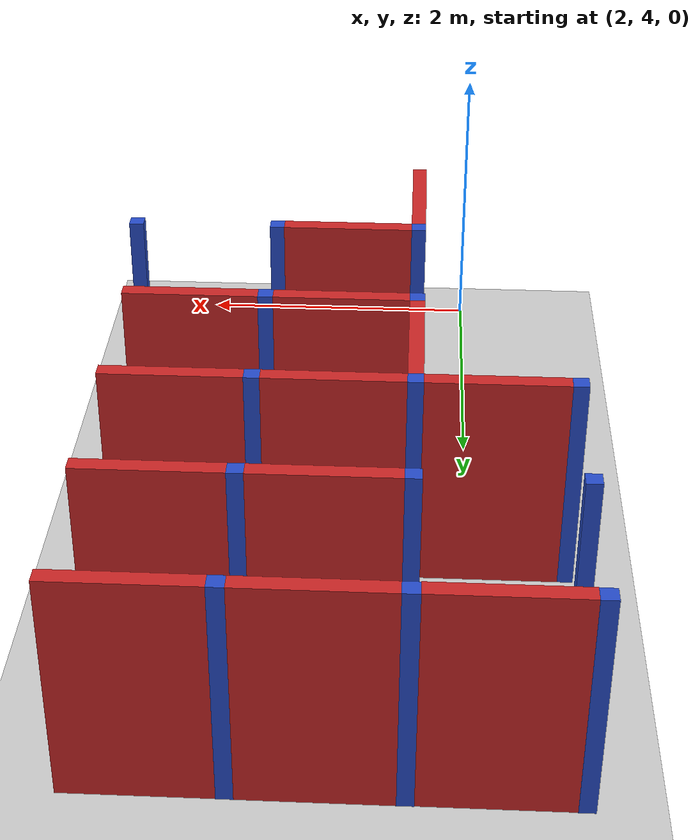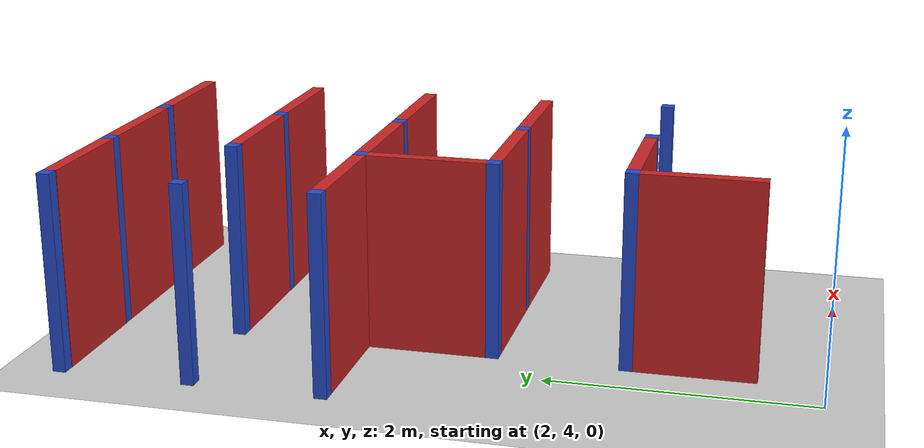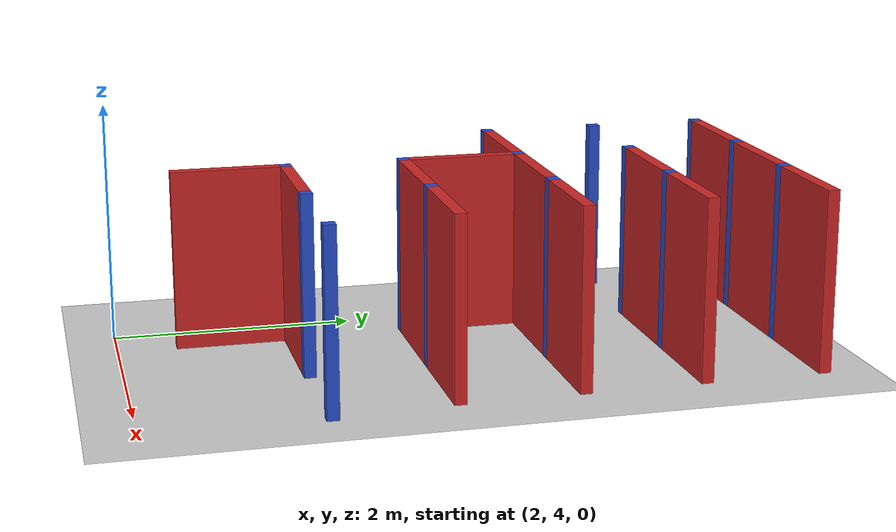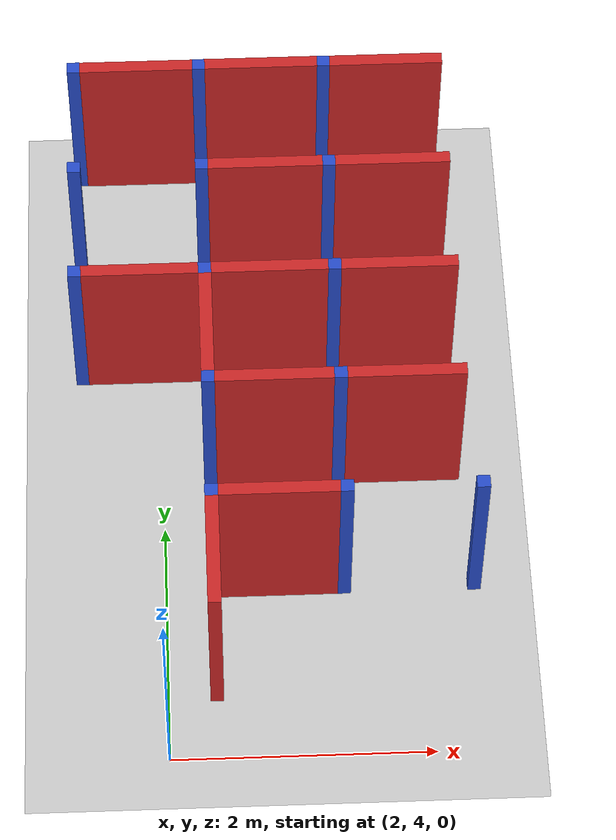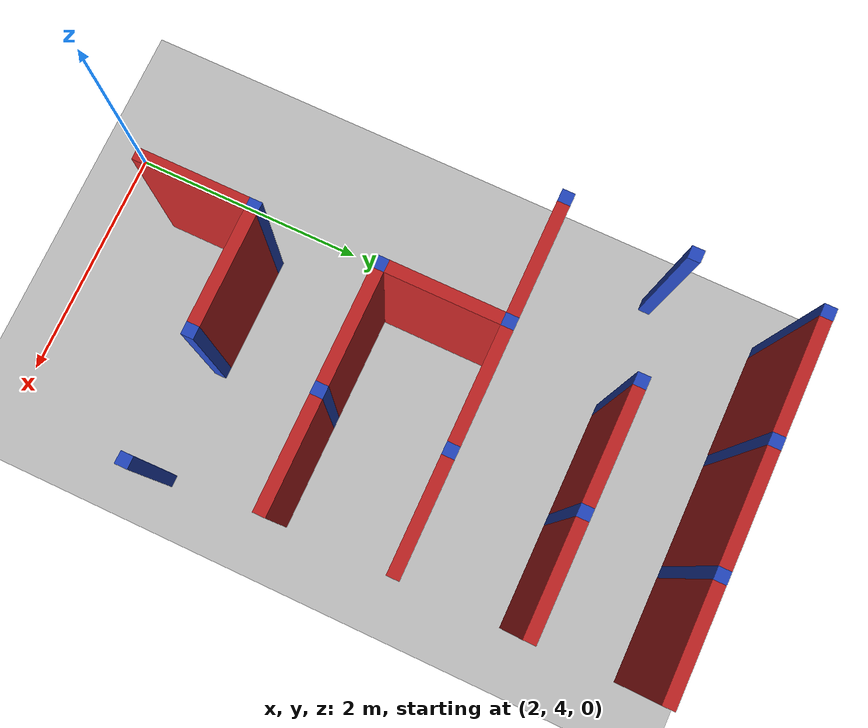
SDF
<sdf version="1.7">
 <world name="default">
  <model name="ground_plane">
   <static>1</static>
   <link name="link">
    <collision name="collision">
     <geometry><plane><normal>0 0 1</normal><size>100 100</size></plane></geometry>
     <surface><friction><ode><mu>100</mu><mu2>50</mu2></ode></friction></surface>
    </collision>
    <visual name="visual">
     <cast_shadows>0</cast_shadows>
     <geometry><plane><normal>0 0 1</normal><size>100 100</size></plane></geometry>
     <material>
      <script><uri>file://media/materials/scripts/gazebo.material</uri><name>Gazebo/Grey</name></script>
     </material>
    </visual>
   </link>
  </model>
  <model name="deneme">
   <link name="Joint_10_-10">
    <pose>10 -10 0 0 -0 0</pose>
    <visual name="Wall_2_Visual">
     <pose>0 0 0.75 0 -0 0</pose>
     <geometry><box><size>0.1 0.1 1.5</size></box></geometry>
     <material>
      <script><uri>file://media/materials/scripts/gazebo.material</uri><name>Gazebo/Blue</name></script>
      <ambient>0.996078 0.47451 0.0196078 1</ambient>
      <shader type="pixel"/>
     </material>
     <meta><layer>0</layer></meta>
    </visual>
    <collision name="Wall_2_Collision">
     <pose>0 0 0.75 0 -0 0</pose>
     <geometry><box><size>0.1 0.1 1.5</size></box></geometry>
     <surface>
      <friction>
       <ode><mu>1</mu><mu2>1</mu2><fdir1>0 0 0</fdir1><slip1>0</slip1><slip2>0</slip2></ode>
       <torsional>
        <coefficient>1</coefficient>
        <patch_radius>0</patch_radius>
        <surface_radius>0</surface_radius>
        <use_patch_radius>1</use_patch_radius>
        <ode><slip>0</slip></ode>
       </torsional>
      </friction>
      <bounce><restitution_coefficient>0</restitution_coefficient><threshold>1e+06</threshold></bounce>
      <contact>
       <collide_without_contact>0</collide_without_contact>
       <collide_without_contact_bitmask>1</collide_without_contact_bitmask>
       <collide_bitmask>1</collide_bitmask>
       <ode>
        <soft_cfm>0</soft_cfm>
        <soft_erp>0.2</soft_erp>
        <kp>1e+13</kp>
        <kd>1</kd>
        <max_vel>0.01</max_vel>
        <min_depth>0</min_depth>
       </ode>
       <bullet>
        <split_impulse>1</split_impulse>
        <split_impulse_penetration_threshold>-0.01</split_impulse_penetration_threshold>
        <soft_cfm>0</soft_cfm>
        <soft_erp>0.2</soft_erp>
        <kp>1e+13</kp>
        <kd>1</kd>
       </bullet>
      </contact>
     </surface>
    </collision>
   </link>
   <link name="Joint_7_-6">
    <pose>7 -6 0 0 -0 0</pose>
    <visual name="Wall_2_Visual">
     <pose>0 0 0.75 0 -0 0</pose>
     <geometry><box><size>0.1 0.1 1.5</size></box></geometry>
     <material>
      <script><uri>file://media/materials/scripts/gazebo.material</uri><name>Gazebo/Blue</name></script>
      <ambient>0.996078 0.47451 0.0196078 1</ambient>
      <shader type="pixel"/>
     </material>
     <meta><layer>0</layer></meta>
    </visual>
    <collision name="Wall_2_Collision">
     <pose>0 0 0.75 0 -0 0</pose>
     <geometry><box><size>0.1 0.1 1.5</size></box></geometry>
     <surface>
      <friction>
       <ode><mu>1</mu><mu2>1</mu2><fdir1>0 0 0</fdir1><slip1>0</slip1><slip2>0</slip2></ode>
       <torsional>
        <coefficient>1</coefficient>
        <patch_radius>0</patch_radius>
        <surface_radius>0</surface_radius>
        <use_patch_radius>1</use_patch_radius>
        <ode><slip>0</slip></ode>
       </torsional>
      </friction>
      <bounce><restitution_coefficient>0</restitution_coefficient><threshold>1e+06</threshold></bounce>
      <contact>
       <collide_without_contact>0</collide_without_contact>
       <collide_without_contact_bitmask>1</collide_without_contact_bitmask>
       <collide_bitmask>1</collide_bitmask>
       <ode>
        <soft_cfm>0</soft_cfm>
        <soft_erp>0.2</soft_erp>
        <kp>1e+13</kp>
        <kd>1</kd>
        <max_vel>0.01</max_vel>
        <min_depth>0</min_depth>
       </ode>
       <bullet>
        <split_impulse>1</split_impulse>
        <split_impulse_penetration_threshold>-0.01</split_impulse_penetration_threshold>
        <soft_cfm>0</soft_cfm>
        <soft_erp>0.2</soft_erp>
        <kp>1e+13</kp>
        <kd>1</kd>
       </bullet>
      </contact>
     </surface>
    </collision>
   </link>
   <link name="Joint_7_-7">
    <pose>7 -7 0 0 -0 0</pose>
    <visual name="Wall_2_Visual">
     <pose>0 0 0.75 0 -0 0</pose>
     <geometry><box><size>0.1 0.1 1.5</size></box></geometry>
     <material>
      <script><uri>file://media/materials/scripts/gazebo.material</uri><name>Gazebo/Blue</name></script>
      <ambient>0.996078 0.47451 0.0196078 1</ambient>
      <shader type="pixel"/>
     </material>
     <meta><layer>0</layer></meta>
    </visual>
    <collision name="Wall_2_Collision">
     <pose>0 0 0.75 0 -0 0</pose>
     <geometry><box><size>0.1 0.1 1.5</size></box></geometry>
     <surface>
      <friction>
       <ode><mu>1</mu><mu2>1</mu2><fdir1>0 0 0</fdir1><slip1>0</slip1><slip2>0</slip2></ode>
       <torsional>
        <coefficient>1</coefficient>
        <patch_radius>0</patch_radius>
        <surface_radius>0</surface_radius>
        <use_patch_radius>1</use_patch_radius>
        <ode><slip>0</slip></ode>
       </torsional>
      </friction>
      <bounce><restitution_coefficient>0</restitution_coefficient><threshold>1e+06</threshold></bounce>
      <contact>
       <collide_without_contact>0</collide_without_contact>
       <collide_without_contact_bitmask>1</collide_without_contact_bitmask>
       <collide_bitmask>1</collide_bitmask>
       <ode>
        <soft_cfm>0</soft_cfm>
        <soft_erp>0.2</soft_erp>
        <kp>1e+13</kp>
        <kd>1</kd>
        <max_vel>0.01</max_vel>
        <min_depth>0</min_depth>
       </ode>
       <bullet>
        <split_impulse>1</split_impulse>
        <split_impulse_penetration_threshold>-0.01</split_impulse_penetration_threshold>
        <soft_cfm>0</soft_cfm>
        <soft_erp>0.2</soft_erp>
        <kp>1e+13</kp>
        <kd>1</kd>
       </bullet>
      </contact>
     </surface>
    </collision>
   </link>
   <link name="Joint_7_-8">
    <pose>7 -8 0 0 -0 0</pose>
    <visual name="Wall_2_Visual">
     <pose>0 0 0.75 0 -0 0</pose>
     <geometry><box><size>0.1 0.1 1.5</size></box></geometry>
     <material>
      <script><uri>file://media/materials/scripts/gazebo.material</uri><name>Gazebo/Blue</name></script>
      <ambient>0.996078 0.47451 0.0196078 1</ambient>
      <shader type="pixel"/>
     </material>
     <meta><layer>0</layer></meta>
    </visual>
    <collision name="Wall_2_Collision">
     <pose>0 0 0.75 0 -0 0</pose>
     <geometry><box><size>0.1 0.1 1.5</size></box></geometry>
     <surface>
      <friction>
       <ode><mu>1</mu><mu2>1</mu2><fdir1>0 0 0</fdir1><slip1>0</slip1><slip2>0</slip2></ode>
       <torsional>
        <coefficient>1</coefficient>
        <patch_radius>0</patch_radius>
        <surface_radius>0</surface_radius>
        <use_patch_radius>1</use_patch_radius>
        <ode><slip>0</slip></ode>
       </torsional>
      </friction>
      <bounce><restitution_coefficient>0</restitution_coefficient><threshold>1e+06</threshold></bounce>
      <contact>
       <collide_without_contact>0</collide_without_contact>
       <collide_without_contact_bitmask>1</collide_without_contact_bitmask>
       <collide_bitmask>1</collide_bitmask>
       <ode>
        <soft_cfm>0</soft_cfm>
        <soft_erp>0.2</soft_erp>
        <kp>1e+13</kp>
        <kd>1</kd>
        <max_vel>0.01</max_vel>
        <min_depth>0</min_depth>
       </ode>
       <bullet>
        <split_impulse>1</split_impulse>
        <split_impulse_penetration_threshold>-0.01</split_impulse_penetration_threshold>
        <soft_cfm>0</soft_cfm>
        <soft_erp>0.2</soft_erp>
        <kp>1e+13</kp>
        <kd>1</kd>
       </bullet>
      </contact>
     </surface>
    </collision>
   </link>
   <link name="Joint_8_-10">
    <pose>8 -10 0 0 -0 0</pose>
    <visual name="Wall_2_Visual">
     <pose>0 0 0.75 0 -0 0</pose>
     <geometry><box><size>0.1 0.1 1.5</size></box></geometry>
     <material>
      <script><uri>file://media/materials/scripts/gazebo.material</uri><name>Gazebo/Blue</name></script>
      <ambient>0.996078 0.47451 0.0196078 1</ambient>
      <shader type="pixel"/>
     </material>
     <meta><layer>0</layer></meta>
    </visual>
    <collision name="Wall_2_Collision">
     <pose>0 0 0.75 0 -0 0</pose>
     <geometry><box><size>0.1 0.1 1.5</size></box></geometry>
     <surface>
      <friction>
       <ode><mu>1</mu><mu2>1</mu2><fdir1>0 0 0</fdir1><slip1>0</slip1><slip2>0</slip2></ode>
       <torsional>
        <coefficient>1</coefficient>
        <patch_radius>0</patch_radius>
        <surface_radius>0</surface_radius>
        <use_patch_radius>1</use_patch_radius>
        <ode><slip>0</slip></ode>
       </torsional>
      </friction>
      <bounce><restitution_coefficient>0</restitution_coefficient><threshold>1e+06</threshold></bounce>
      <contact>
       <collide_without_contact>0</collide_without_contact>
       <collide_without_contact_bitmask>1</collide_without_contact_bitmask>
       <collide_bitmask>1</collide_bitmask>
       <ode>
        <soft_cfm>0</soft_cfm>
        <soft_erp>0.2</soft_erp>
        <kp>1e+13</kp>
        <kd>1</kd>
        <max_vel>0.01</max_vel>
        <min_depth>0</min_depth>
       </ode>
       <bullet>
        <split_impulse>1</split_impulse>
        <split_impulse_penetration_threshold>-0.01</split_impulse_penetration_threshold>
        <soft_cfm>0</soft_cfm>
        <soft_erp>0.2</soft_erp>
        <kp>1e+13</kp>
        <kd>1</kd>
       </bullet>
      </contact>
     </surface>
    </collision>
   </link>
   <link name="Joint_8_-6">
    <pose>8 -6 0 0 -0 0</pose>
    <visual name="Wall_2_Visual">
     <pose>0 0 0.75 0 -0 0</pose>
     <geometry><box><size>0.1 0.1 1.5</size></box></geometry>
     <material>
      <script><uri>file://media/materials/scripts/gazebo.material</uri><name>Gazebo/Blue</name></script>
      <ambient>0.996078 0.47451 0.0196078 1</ambient>
      <shader type="pixel"/>
     </material>
     <meta><layer>0</layer></meta>
    </visual>
    <collision name="Wall_2_Collision">
     <pose>0 0 0.75 0 -0 0</pose>
     <geometry><box><size>0.1 0.1 1.5</size></box></geometry>
     <surface>
      <friction>
       <ode><mu>1</mu><mu2>1</mu2><fdir1>0 0 0</fdir1><slip1>0</slip1><slip2>0</slip2></ode>
       <torsional>
        <coefficient>1</coefficient>
        <patch_radius>0</patch_radius>
        <surface_radius>0</surface_radius>
        <use_patch_radius>1</use_patch_radius>
        <ode><slip>0</slip></ode>
       </torsional>
      </friction>
      <bounce><restitution_coefficient>0</restitution_coefficient><threshold>1e+06</threshold></bounce>
      <contact>
       <collide_without_contact>0</collide_without_contact>
       <collide_without_contact_bitmask>1</collide_without_contact_bitmask>
       <collide_bitmask>1</collide_bitmask>
       <ode>
        <soft_cfm>0</soft_cfm>
        <soft_erp>0.2</soft_erp>
        <kp>1e+13</kp>
        <kd>1</kd>
        <max_vel>0.01</max_vel>
        <min_depth>0</min_depth>
       </ode>
       <bullet>
        <split_impulse>1</split_impulse>
        <split_impulse_penetration_threshold>-0.01</split_impulse_penetration_threshold>
        <soft_cfm>0</soft_cfm>
        <soft_erp>0.2</soft_erp>
        <kp>1e+13</kp>
        <kd>1</kd>
       </bullet>
      </contact>
     </surface>
    </collision>
   </link>
   <link name="Joint_8_-7">
    <pose>8 -7 0 0 -0 0</pose>
    <visual name="Wall_2_Visual">
     <pose>0 0 0.75 0 -0 0</pose>
     <geometry><box><size>0.1 0.1 1.5</size></box></geometry>
     <material>
      <script><uri>file://media/materials/scripts/gazebo.material</uri><name>Gazebo/Blue</name></script>
      <ambient>0.996078 0.47451 0.0196078 1</ambient>
      <shader type="pixel"/>
     </material>
     <meta><layer>0</layer></meta>
    </visual>
    <collision name="Wall_2_Collision">
     <pose>0 0 0.75 0 -0 0</pose>
     <geometry><box><size>0.1 0.1 1.5</size></box></geometry>
     <surface>
      <friction>
       <ode><mu>1</mu><mu2>1</mu2><fdir1>0 0 0</fdir1><slip1>0</slip1><slip2>0</slip2></ode>
       <torsional>
        <coefficient>1</coefficient>
        <patch_radius>0</patch_radius>
        <surface_radius>0</surface_radius>
        <use_patch_radius>1</use_patch_radius>
        <ode><slip>0</slip></ode>
       </torsional>
      </friction>
      <bounce><restitution_coefficient>0</restitution_coefficient><threshold>1e+06</threshold></bounce>
      <contact>
       <collide_without_contact>0</collide_without_contact>
       <collide_without_contact_bitmask>1</collide_without_contact_bitmask>
       <collide_bitmask>1</collide_bitmask>
       <ode>
        <soft_cfm>0</soft_cfm>
        <soft_erp>0.2</soft_erp>
        <kp>1e+13</kp>
        <kd>1</kd>
        <max_vel>0.01</max_vel>
        <min_depth>0</min_depth>
       </ode>
       <bullet>
        <split_impulse>1</split_impulse>
        <split_impulse_penetration_threshold>-0.01</split_impulse_penetration_threshold>
        <soft_cfm>0</soft_cfm>
        <soft_erp>0.2</soft_erp>
        <kp>1e+13</kp>
        <kd>1</kd>
       </bullet>
      </contact>
     </surface>
    </collision>
   </link>
   <link name="Joint_8_-8">
    <pose>8 -8 0 0 -0 0</pose>
    <visual name="Wall_2_Visual">
     <pose>0 0 0.75 0 -0 0</pose>
     <geometry><box><size>0.1 0.1 1.5</size></box></geometry>
     <material>
      <script><uri>file://media/materials/scripts/gazebo.material</uri><name>Gazebo/Blue</name></script>
      <ambient>0.996078 0.47451 0.0196078 1</ambient>
      <shader type="pixel"/>
     </material>
     <meta><layer>0</layer></meta>
    </visual>
    <collision name="Wall_2_Collision">
     <pose>0 0 0.75 0 -0 0</pose>
     <geometry><box><size>0.1 0.1 1.5</size></box></geometry>
     <surface>
      <friction>
       <ode><mu>1</mu><mu2>1</mu2><fdir1>0 0 0</fdir1><slip1>0</slip1><slip2>0</slip2></ode>
       <torsional>
        <coefficient>1</coefficient>
        <patch_radius>0</patch_radius>
        <surface_radius>0</surface_radius>
        <use_patch_radius>1</use_patch_radius>
        <ode><slip>0</slip></ode>
       </torsional>
      </friction>
      <bounce><restitution_coefficient>0</restitution_coefficient><threshold>1e+06</threshold></bounce>
      <contact>
       <collide_without_contact>0</collide_without_contact>
       <collide_without_contact_bitmask>1</collide_without_contact_bitmask>
       <collide_bitmask>1</collide_bitmask>
       <ode>
        <soft_cfm>0</soft_cfm>
        <soft_erp>0.2</soft_erp>
        <kp>1e+13</kp>
        <kd>1</kd>
        <max_vel>0.01</max_vel>
        <min_depth>0</min_depth>
       </ode>
       <bullet>
        <split_impulse>1</split_impulse>
        <split_impulse_penetration_threshold>-0.01</split_impulse_penetration_threshold>
        <soft_cfm>0</soft_cfm>
        <soft_erp>0.2</soft_erp>
        <kp>1e+13</kp>
        <kd>1</kd>
       </bullet>
      </contact>
     </surface>
    </collision>
   </link>
   <link name="Joint_8_-9">
    <pose>8 -9 0 0 -0 0</pose>
    <visual name="Wall_2_Visual">
     <pose>0 0 0.75 0 -0 0</pose>
     <geometry><box><size>0.1 0.1 1.5</size></box></geometry>
     <material>
      <script><uri>file://media/materials/scripts/gazebo.material</uri><name>Gazebo/Blue</name></script>
      <ambient>0.996078 0.47451 0.0196078 1</ambient>
      <shader type="pixel"/>
     </material>
     <meta><layer>0</layer></meta>
    </visual>
    <collision name="Wall_2_Collision">
     <pose>0 0 0.75 0 -0 0</pose>
     <geometry><box><size>0.1 0.1 1.5</size></box></geometry>
     <surface>
      <friction>
       <ode><mu>1</mu><mu2>1</mu2><fdir1>0 0 0</fdir1><slip1>0</slip1><slip2>0</slip2></ode>
       <torsional>
        <coefficient>1</coefficient>
        <patch_radius>0</patch_radius>
        <surface_radius>0</surface_radius>
        <use_patch_radius>1</use_patch_radius>
        <ode><slip>0</slip></ode>
       </torsional>
      </friction>
      <bounce><restitution_coefficient>0</restitution_coefficient><threshold>1e+06</threshold></bounce>
      <contact>
       <collide_without_contact>0</collide_without_contact>
       <collide_without_contact_bitmask>1</collide_without_contact_bitmask>
       <collide_bitmask>1</collide_bitmask>
       <ode>
        <soft_cfm>0</soft_cfm>
        <soft_erp>0.2</soft_erp>
        <kp>1e+13</kp>
        <kd>1</kd>
        <max_vel>0.01</max_vel>
        <min_depth>0</min_depth>
       </ode>
       <bullet>
        <split_impulse>1</split_impulse>
        <split_impulse_penetration_threshold>-0.01</split_impulse_penetration_threshold>
        <soft_cfm>0</soft_cfm>
        <soft_erp>0.2</soft_erp>
        <kp>1e+13</kp>
        <kd>1</kd>
       </bullet>
      </contact>
     </surface>
    </collision>
   </link>
   <link name="Joint_9_-10">
    <pose>9 -10 0 0 -0 0</pose>
    <visual name="Wall_2_Visual">
     <pose>0 0 0.75 0 -0 0</pose>
     <geometry><box><size>0.1 0.1 1.5</size></box></geometry>
     <material>
      <script><uri>file://media/materials/scripts/gazebo.material</uri><name>Gazebo/Blue</name></script>
      <ambient>0.996078 0.47451 0.0196078 1</ambient>
      <shader type="pixel"/>
     </material>
     <meta><layer>0</layer></meta>
    </visual>
    <collision name="Wall_2_Collision">
     <pose>0 0 0.75 0 -0 0</pose>
     <geometry><box><size>0.1 0.1 1.5</size></box></geometry>
     <surface>
      <friction>
       <ode><mu>1</mu><mu2>1</mu2><fdir1>0 0 0</fdir1><slip1>0</slip1><slip2>0</slip2></ode>
       <torsional>
        <coefficient>1</coefficient>
        <patch_radius>0</patch_radius>
        <surface_radius>0</surface_radius>
        <use_patch_radius>1</use_patch_radius>
        <ode><slip>0</slip></ode>
       </torsional>
      </friction>
      <bounce><restitution_coefficient>0</restitution_coefficient><threshold>1e+06</threshold></bounce>
      <contact>
       <collide_without_contact>0</collide_without_contact>
       <collide_without_contact_bitmask>1</collide_without_contact_bitmask>
       <collide_bitmask>1</collide_bitmask>
       <ode>
        <soft_cfm>0</soft_cfm>
        <soft_erp>0.2</soft_erp>
        <kp>1e+13</kp>
        <kd>1</kd>
        <max_vel>0.01</max_vel>
        <min_depth>0</min_depth>
       </ode>
       <bullet>
        <split_impulse>1</split_impulse>
        <split_impulse_penetration_threshold>-0.01</split_impulse_penetration_threshold>
        <soft_cfm>0</soft_cfm>
        <soft_erp>0.2</soft_erp>
        <kp>1e+13</kp>
        <kd>1</kd>
       </bullet>
      </contact>
     </surface>
    </collision>
   </link>
   <link name="Joint_9_-6">
    <pose>9 -6 0 0 -0 0</pose>
    <visual name="Wall_2_Visual">
     <pose>0 0 0.75 0 -0 0</pose>
     <geometry><box><size>0.1 0.1 1.5</size></box></geometry>
     <material>
      <script><uri>file://media/materials/scripts/gazebo.material</uri><name>Gazebo/Blue</name></script>
      <ambient>0.996078 0.47451 0.0196078 1</ambient>
      <shader type="pixel"/>
     </material>
     <meta><layer>0</layer></meta>
    </visual>
    <collision name="Wall_2_Collision">
     <pose>0 0 0.75 0 -0 0</pose>
     <geometry><box><size>0.1 0.1 1.5</size></box></geometry>
     <surface>
      <friction>
       <ode><mu>1</mu><mu2>1</mu2><fdir1>0 0 0</fdir1><slip1>0</slip1><slip2>0</slip2></ode>
       <torsional>
        <coefficient>1</coefficient>
        <patch_radius>0</patch_radius>
        <surface_radius>0</surface_radius>
        <use_patch_radius>1</use_patch_radius>
        <ode><slip>0</slip></ode>
       </torsional>
      </friction>
      <bounce><restitution_coefficient>0</restitution_coefficient><threshold>1e+06</threshold></bounce>
      <contact>
       <collide_without_contact>0</collide_without_contact>
       <collide_without_contact_bitmask>1</collide_without_contact_bitmask>
       <collide_bitmask>1</collide_bitmask>
       <ode>
        <soft_cfm>0</soft_cfm>
        <soft_erp>0.2</soft_erp>
        <kp>1e+13</kp>
        <kd>1</kd>
        <max_vel>0.01</max_vel>
        <min_depth>0</min_depth>
       </ode>
       <bullet>
        <split_impulse>1</split_impulse>
        <split_impulse_penetration_threshold>-0.01</split_impulse_penetration_threshold>
        <soft_cfm>0</soft_cfm>
        <soft_erp>0.2</soft_erp>
        <kp>1e+13</kp>
        <kd>1</kd>
       </bullet>
      </contact>
     </surface>
    </collision>
   </link>
   <link name="Joint_9_-7">
    <pose>9 -7 0 0 -0 0</pose>
    <visual name="Wall_2_Visual">
     <pose>0 0 0.75 0 -0 0</pose>
     <geometry><box><size>0.1 0.1 1.5</size></box></geometry>
     <material>
      <script><uri>file://media/materials/scripts/gazebo.material</uri><name>Gazebo/Blue</name></script>
      <ambient>0.996078 0.47451 0.0196078 1</ambient>
      <shader type="pixel"/>
     </material>
     <meta><layer>0</layer></meta>
    </visual>
    <collision name="Wall_2_Collision">
     <pose>0 0 0.75 0 -0 0</pose>
     <geometry><box><size>0.1 0.1 1.5</size></box></geometry>
     <surface>
      <friction>
       <ode><mu>1</mu><mu2>1</mu2><fdir1>0 0 0</fdir1><slip1>0</slip1><slip2>0</slip2></ode>
       <torsional>
        <coefficient>1</coefficient>
        <patch_radius>0</patch_radius>
        <surface_radius>0</surface_radius>
        <use_patch_radius>1</use_patch_radius>
        <ode><slip>0</slip></ode>
       </torsional>
      </friction>
      <bounce><restitution_coefficient>0</restitution_coefficient><threshold>1e+06</threshold></bounce>
      <contact>
       <collide_without_contact>0</collide_without_contact>
       <collide_without_contact_bitmask>1</collide_without_contact_bitmask>
       <collide_bitmask>1</collide_bitmask>
       <ode>
        <soft_cfm>0</soft_cfm>
        <soft_erp>0.2</soft_erp>
        <kp>1e+13</kp>
        <kd>1</kd>
        <max_vel>0.01</max_vel>
        <min_depth>0</min_depth>
       </ode>
       <bullet>
        <split_impulse>1</split_impulse>
        <split_impulse_penetration_threshold>-0.01</split_impulse_penetration_threshold>
        <soft_cfm>0</soft_cfm>
        <soft_erp>0.2</soft_erp>
        <kp>1e+13</kp>
        <kd>1</kd>
       </bullet>
      </contact>
     </surface>
    </collision>
   </link>
   <link name="Joint_9_-8">
    <pose>9 -8 0 0 -0 0</pose>
    <visual name="Wall_2_Visual">
     <pose>0 0 0.75 0 -0 0</pose>
     <geometry><box><size>0.1 0.1 1.5</size></box></geometry>
     <material>
      <script><uri>file://media/materials/scripts/gazebo.material</uri><name>Gazebo/Blue</name></script>
      <ambient>0.996078 0.47451 0.0196078 1</ambient>
      <shader type="pixel"/>
     </material>
     <meta><layer>0</layer></meta>
    </visual>
    <collision name="Wall_2_Collision">
     <pose>0 0 0.75 0 -0 0</pose>
     <geometry><box><size>0.1 0.1 1.5</size></box></geometry>
     <surface>
      <friction>
       <ode><mu>1</mu><mu2>1</mu2><fdir1>0 0 0</fdir1><slip1>0</slip1><slip2>0</slip2></ode>
       <torsional>
        <coefficient>1</coefficient>
        <patch_radius>0</patch_radius>
        <surface_radius>0</surface_radius>
        <use_patch_radius>1</use_patch_radius>
        <ode><slip>0</slip></ode>
       </torsional>
      </friction>
      <bounce><restitution_coefficient>0</restitution_coefficient><threshold>1e+06</threshold></bounce>
      <contact>
       <collide_without_contact>0</collide_without_contact>
       <collide_without_contact_bitmask>1</collide_without_contact_bitmask>
       <collide_bitmask>1</collide_bitmask>
       <ode>
        <soft_cfm>0</soft_cfm>
        <soft_erp>0.2</soft_erp>
        <kp>1e+13</kp>
        <kd>1</kd>
        <max_vel>0.01</max_vel>
        <min_depth>0</min_depth>
       </ode>
       <bullet>
        <split_impulse>1</split_impulse>
        <split_impulse_penetration_threshold>-0.01</split_impulse_penetration_threshold>
        <soft_cfm>0</soft_cfm>
        <soft_erp>0.2</soft_erp>
        <kp>1e+13</kp>
        <kd>1</kd>
       </bullet>
      </contact>
     </surface>
    </collision>
   </link>
   <link name="Joint_9_-9">
    <pose>9 -9 0 0 -0 0</pose>
    <visual name="Wall_2_Visual">
     <pose>0 0 0.75 0 -0 0</pose>
     <geometry><box><size>0.1 0.1 1.5</size></box></geometry>
     <material>
      <script><uri>file://media/materials/scripts/gazebo.material</uri><name>Gazebo/Blue</name></script>
      <ambient>0.996078 0.47451 0.0196078 1</ambient>
      <shader type="pixel"/>
     </material>
     <meta><layer>0</layer></meta>
    </visual>
    <collision name="Wall_2_Collision">
     <pose>0 0 0.75 0 -0 0</pose>
     <geometry><box><size>0.1 0.1 1.5</size></box></geometry>
     <surface>
      <friction>
       <ode><mu>1</mu><mu2>1</mu2><fdir1>0 0 0</fdir1><slip1>0</slip1><slip2>0</slip2></ode>
       <torsional>
        <coefficient>1</coefficient>
        <patch_radius>0</patch_radius>
        <surface_radius>0</surface_radius>
        <use_patch_radius>1</use_patch_radius>
        <ode><slip>0</slip></ode>
       </torsional>
      </friction>
      <bounce><restitution_coefficient>0</restitution_coefficient><threshold>1e+06</threshold></bounce>
      <contact>
       <collide_without_contact>0</collide_without_contact>
       <collide_without_contact_bitmask>1</collide_without_contact_bitmask>
       <collide_bitmask>1</collide_bitmask>
       <ode>
        <soft_cfm>0</soft_cfm>
        <soft_erp>0.2</soft_erp>
        <kp>1e+13</kp>
        <kd>1</kd>
        <max_vel>0.01</max_vel>
        <min_depth>0</min_depth>
       </ode>
       <bullet>
        <split_impulse>1</split_impulse>
        <split_impulse_penetration_threshold>-0.01</split_impulse_penetration_threshold>
        <soft_cfm>0</soft_cfm>
        <soft_erp>0.2</soft_erp>
        <kp>1e+13</kp>
        <kd>1</kd>
       </bullet>
      </contact>
     </surface>
    </collision>
   </link>
   <link name="Wall_7_5_h">
    <pose>7.5 -6.00221 0 0 -0 0</pose>
    <visual name="Wall_0_Visual">
     <pose>0 0 0.75 0 -0 0</pose>
     <geometry><box><size>0.9 0.1 1.5</size></box></geometry>
     <material>
      <script><uri>file://media/materials/scripts/gazebo.material</uri><name>Gazebo/Red</name></script>
      <ambient>0.921569 0.807843 0.615686 1</ambient>
      <shader type="pixel"/>
     </material>
     <meta><layer>0</layer></meta>
    </visual>
    <collision name="Wall_0_Collision">
     <pose>0 0 0.75 0 -0 0</pose>
     <geometry><box><size>0.9 0.1 1.5</size></box></geometry>
     <surface>
      <friction>
       <ode><mu>1</mu><mu2>1</mu2><fdir1>0 0 0</fdir1><slip1>0</slip1><slip2>0</slip2></ode>
       <torsional>
        <coefficient>1</coefficient>
        <patch_radius>0</patch_radius>
        <surface_radius>0</surface_radius>
        <use_patch_radius>1</use_patch_radius>
        <ode><slip>0</slip></ode>
       </torsional>
      </friction>
      <bounce><restitution_coefficient>0</restitution_coefficient><threshold>1e+06</threshold></bounce>
      <contact>
       <collide_without_contact>0</collide_without_contact>
       <collide_without_contact_bitmask>1</collide_without_contact_bitmask>
       <collide_bitmask>1</collide_bitmask>
       <ode>
        <soft_cfm>0</soft_cfm>
        <soft_erp>0.2</soft_erp>
        <kp>1e+13</kp>
        <kd>1</kd>
        <max_vel>0.01</max_vel>
        <min_depth>0</min_depth>
       </ode>
       <bullet>
        <split_impulse>1</split_impulse>
        <split_impulse_penetration_threshold>-0.01</split_impulse_penetration_threshold>
        <soft_cfm>0</soft_cfm>
        <soft_erp>0.2</soft_erp>
        <kp>1e+13</kp>
        <kd>1</kd>
       </bullet>
      </contact>
     </surface>
    </collision>
   </link>
   <link name="Wall_7_8_h">
    <pose>7.5 -8 0 0 -0 0</pose>
    <visual name="Wall_0_Visual">
     <pose>0 0 0.75 0 -0 0</pose>
     <geometry><box><size>0.9 0.1 1.5</size></box></geometry>
     <material>
      <script><uri>file://media/materials/scripts/gazebo.material</uri><name>Gazebo/Red</name></script>
      <ambient>0.921569 0.807843 0.615686 1</ambient>
      <shader type="pixel"/>
     </material>
     <meta><layer>0</layer></meta>
    </visual>
    <collision name="Wall_0_Collision">
     <pose>0 0 0.75 0 -0 0</pose>
     <geometry><box><size>0.9 0.1 1.5</size></box></geometry>
     <surface>
      <friction>
       <ode><mu>1</mu><mu2>1</mu2><fdir1>0 0 0</fdir1><slip1>0</slip1><slip2>0</slip2></ode>
       <torsional>
        <coefficient>1</coefficient>
        <patch_radius>0</patch_radius>
        <surface_radius>0</surface_radius>
        <use_patch_radius>1</use_patch_radius>
        <ode><slip>0</slip></ode>
       </torsional>
      </friction>
      <bounce><restitution_coefficient>0</restitution_coefficient><threshold>1e+06</threshold></bounce>
      <contact>
       <collide_without_contact>0</collide_without_contact>
       <collide_without_contact_bitmask>1</collide_without_contact_bitmask>
       <collide_bitmask>1</collide_bitmask>
       <ode>
        <soft_cfm>0</soft_cfm>
        <soft_erp>0.2</soft_erp>
        <kp>1e+13</kp>
        <kd>1</kd>
        <max_vel>0.01</max_vel>
        <min_depth>0</min_depth>
       </ode>
       <bullet>
        <split_impulse>1</split_impulse>
        <split_impulse_penetration_threshold>-0.01</split_impulse_penetration_threshold>
        <soft_cfm>0</soft_cfm>
        <soft_erp>0.2</soft_erp>
        <kp>1e+13</kp>
        <kd>1</kd>
       </bullet>
      </contact>
     </surface>
    </collision>
   </link>
   <link name="Wall_8_10_h">
    <pose>8.5 -10 0 0 -0 0</pose>
    <visual name="Wall_0_Visual">
     <pose>0 0 0.75 0 -0 0</pose>
     <geometry><box><size>0.9 0.1 1.5</size></box></geometry>
     <material>
      <script><uri>file://media/materials/scripts/gazebo.material</uri><name>Gazebo/Red</name></script>
      <ambient>0.921569 0.807843 0.615686 1</ambient>
      <shader type="pixel"/>
     </material>
     <meta><layer>0</layer></meta>
    </visual>
    <collision name="Wall_0_Collision">
     <pose>0 0 0.75 0 -0 0</pose>
     <geometry><box><size>0.9 0.1 1.5</size></box></geometry>
     <surface>
      <friction>
       <ode><mu>1</mu><mu2>1</mu2><fdir1>0 0 0</fdir1><slip1>0</slip1><slip2>0</slip2></ode>
       <torsional>
        <coefficient>1</coefficient>
        <patch_radius>0</patch_radius>
        <surface_radius>0</surface_radius>
        <use_patch_radius>1</use_patch_radius>
        <ode><slip>0</slip></ode>
       </torsional>
      </friction>
      <bounce><restitution_coefficient>0</restitution_coefficient><threshold>1e+06</threshold></bounce>
      <contact>
       <collide_without_contact>0</collide_without_contact>
       <collide_without_contact_bitmask>1</collide_without_contact_bitmask>
       <collide_bitmask>1</collide_bitmask>
       <ode>
        <soft_cfm>0</soft_cfm>
        <soft_erp>0.2</soft_erp>
        <kp>1e+13</kp>
        <kd>1</kd>
        <max_vel>0.01</max_vel>
        <min_depth>0</min_depth>
       </ode>
       <bullet>
        <split_impulse>1</split_impulse>
        <split_impulse_penetration_threshold>-0.01</split_impulse_penetration_threshold>
        <soft_cfm>0</soft_cfm>
        <soft_erp>0.2</soft_erp>
        <kp>1e+13</kp>
        <kd>1</kd>
       </bullet>
      </contact>
     </surface>
    </collision>
   </link>
   <link name="Wall_8_10_v">
    <pose>8 -10.5 0 0 -0 1.5708</pose>
    <visual name="Wall_0_Visual">
     <pose>0 0 0.75 0 -0 0</pose>
     <geometry><box><size>0.9 0.1 1.5</size></box></geometry>
     <material>
      <script><uri>file://media/materials/scripts/gazebo.material</uri><name>Gazebo/Red</name></script>
      <ambient>0.921569 0.807843 0.615686 1</ambient>
      <shader type="pixel"/>
     </material>
     <meta><layer>0</layer></meta>
    </visual>
    <collision name="Wall_0_Collision">
     <pose>0 0 0.75 0 -0 0</pose>
     <geometry><box><size>0.9 0.1 1.5</size></box></geometry>
     <surface>
      <friction>
       <ode><mu>1</mu><mu2>1</mu2><fdir1>0 0 0</fdir1><slip1>0</slip1><slip2>0</slip2></ode>
       <torsional>
        <coefficient>1</coefficient>
        <patch_radius>0</patch_radius>
        <surface_radius>0</surface_radius>
        <use_patch_radius>1</use_patch_radius>
        <ode><slip>0</slip></ode>
       </torsional>
      </friction>
      <bounce><restitution_coefficient>0</restitution_coefficient><threshold>1e+06</threshold></bounce>
      <contact>
       <collide_without_contact>0</collide_without_contact>
       <collide_without_contact_bitmask>1</collide_without_contact_bitmask>
       <collide_bitmask>1</collide_bitmask>
       <ode>
        <soft_cfm>0</soft_cfm>
        <soft_erp>0.2</soft_erp>
        <kp>1e+13</kp>
        <kd>1</kd>
        <max_vel>0.01</max_vel>
        <min_depth>0</min_depth>
       </ode>
       <bullet>
        <split_impulse>1</split_impulse>
        <split_impulse_penetration_threshold>-0.01</split_impulse_penetration_threshold>
        <soft_cfm>0</soft_cfm>
        <soft_erp>0.2</soft_erp>
        <kp>1e+13</kp>
        <kd>1</kd>
       </bullet>
      </contact>
     </surface>
    </collision>
   </link>
   <link name="Wall_8_6_h">
    <pose>8.5 -6 0 0 -0 0</pose>
    <visual name="Wall_0_Visual">
     <pose>0 0 0.75 0 -0 0</pose>
     <geometry><box><size>0.9 0.1 1.5</size></box></geometry>
     <material>
      <script><uri>file://media/materials/scripts/gazebo.material</uri><name>Gazebo/Red</name></script>
      <ambient>0.921569 0.807843 0.615686 1</ambient>
      <shader type="pixel"/>
     </material>
     <meta><layer>0</layer></meta>
    </visual>
    <collision name="Wall_0_Collision">
     <pose>0 0 0.75 0 -0 0</pose>
     <geometry><box><size>0.9 0.1 1.5</size></box></geometry>
     <surface>
      <friction>
       <ode><mu>1</mu><mu2>1</mu2><fdir1>0 0 0</fdir1><slip1>0</slip1><slip2>0</slip2></ode>
       <torsional>
        <coefficient>1</coefficient>
        <patch_radius>0</patch_radius>
        <surface_radius>0</surface_radius>
        <use_patch_radius>1</use_patch_radius>
        <ode><slip>0</slip></ode>
       </torsional>
      </friction>
      <bounce><restitution_coefficient>0</restitution_coefficient><threshold>1e+06</threshold></bounce>
      <contact>
       <collide_without_contact>0</collide_without_contact>
       <collide_without_contact_bitmask>1</collide_without_contact_bitmask>
       <collide_bitmask>1</collide_bitmask>
       <ode>
        <soft_cfm>0</soft_cfm>
        <soft_erp>0.2</soft_erp>
        <kp>1e+13</kp>
        <kd>1</kd>
        <max_vel>0.01</max_vel>
        <min_depth>0</min_depth>
       </ode>
       <bullet>
        <split_impulse>1</split_impulse>
        <split_impulse_penetration_threshold>-0.01</split_impulse_penetration_threshold>
        <soft_cfm>0</soft_cfm>
        <soft_erp>0.2</soft_erp>
        <kp>1e+13</kp>
        <kd>1</kd>
       </bullet>
      </contact>
     </surface>
    </collision>
   </link>
   <link name="Wall_8_7_h">
    <pose>8.5 -7 0 0 -0 0</pose>
    <visual name="Wall_0_Visual">
     <pose>0 0 0.75 0 -0 0</pose>
     <geometry><box><size>0.9 0.1 1.5</size></box></geometry>
     <material>
      <script><uri>file://media/materials/scripts/gazebo.material</uri><name>Gazebo/Red</name></script>
      <ambient>0.921569 0.807843 0.615686 1</ambient>
      <shader type="pixel"/>
     </material>
     <meta><layer>0</layer></meta>
    </visual>
    <collision name="Wall_0_Collision">
     <pose>0 0 0.75 0 -0 0</pose>
     <geometry><box><size>0.9 0.1 1.5</size></box></geometry>
     <surface>
      <friction>
       <ode><mu>1</mu><mu2>1</mu2><fdir1>0 0 0</fdir1><slip1>0</slip1><slip2>0</slip2></ode>
       <torsional>
        <coefficient>1</coefficient>
        <patch_radius>0</patch_radius>
        <surface_radius>0</surface_radius>
        <use_patch_radius>1</use_patch_radius>
        <ode><slip>0</slip></ode>
       </torsional>
      </friction>
      <bounce><restitution_coefficient>0</restitution_coefficient><threshold>1e+06</threshold></bounce>
      <contact>
       <collide_without_contact>0</collide_without_contact>
       <collide_without_contact_bitmask>1</collide_without_contact_bitmask>
       <collide_bitmask>1</collide_bitmask>
       <ode>
        <soft_cfm>0</soft_cfm>
        <soft_erp>0.2</soft_erp>
        <kp>1e+13</kp>
        <kd>1</kd>
        <max_vel>0.01</max_vel>
        <min_depth>0</min_depth>
       </ode>
       <bullet>
        <split_impulse>1</split_impulse>
        <split_impulse_penetration_threshold>-0.01</split_impulse_penetration_threshold>
        <soft_cfm>0</soft_cfm>
        <soft_erp>0.2</soft_erp>
        <kp>1e+13</kp>
        <kd>1</kd>
       </bullet>
      </contact>
     </surface>
    </collision>
   </link>
   <link name="Wall_8_8_h">
    <pose>8.5 -8 0 0 -0 0</pose>
    <visual name="Wall_0_Visual">
     <pose>0 0 0.75 0 -0 0</pose>
     <geometry><box><size>0.9 0.1 1.5</size></box></geometry>
     <material>
      <script><uri>file://media/materials/scripts/gazebo.material</uri><name>Gazebo/Red</name></script>
      <ambient>0.921569 0.807843 0.615686 1</ambient>
      <shader type="pixel"/>
     </material>
     <meta><layer>0</layer></meta>
    </visual>
    <collision name="Wall_0_Collision">
     <pose>0 0 0.75 0 -0 0</pose>
     <geometry><box><size>0.9 0.1 1.5</size></box></geometry>
     <surface>
      <friction>
       <ode><mu>1</mu><mu2>1</mu2><fdir1>0 0 0</fdir1><slip1>0</slip1><slip2>0</slip2></ode>
       <torsional>
        <coefficient>1</coefficient>
        <patch_radius>0</patch_radius>
        <surface_radius>0</surface_radius>
        <use_patch_radius>1</use_patch_radius>
        <ode><slip>0</slip></ode>
       </torsional>
      </friction>
      <bounce><restitution_coefficient>0</restitution_coefficient><threshold>1e+06</threshold></bounce>
      <contact>
       <collide_without_contact>0</collide_without_contact>
       <collide_without_contact_bitmask>1</collide_without_contact_bitmask>
       <collide_bitmask>1</collide_bitmask>
       <ode>
        <soft_cfm>0</soft_cfm>
        <soft_erp>0.2</soft_erp>
        <kp>1e+13</kp>
        <kd>1</kd>
        <max_vel>0.01</max_vel>
        <min_depth>0</min_depth>
       </ode>
       <bullet>
        <split_impulse>1</split_impulse>
        <split_impulse_penetration_threshold>-0.01</split_impulse_penetration_threshold>
        <soft_cfm>0</soft_cfm>
        <soft_erp>0.2</soft_erp>
        <kp>1e+13</kp>
        <kd>1</kd>
       </bullet>
      </contact>
     </surface>
    </collision>
   </link>
   <link name="Wall_8_8_v">
    <pose>8 -8.5 0 0 -0 1.5708</pose>
    <visual name="Wall_0_Visual">
     <pose>0 0 0.75 0 -0 0</pose>
     <geometry><box><size>0.9 0.1 1.5</size></box></geometry>
     <material>
      <script><uri>file://media/materials/scripts/gazebo.material</uri><name>Gazebo/Red</name></script>
      <ambient>0.921569 0.807843 0.615686 1</ambient>
      <shader type="pixel"/>
     </material>
     <meta><layer>0</layer></meta>
    </visual>
    <collision name="Wall_0_Collision">
     <pose>0 0 0.75 0 -0 0</pose>
     <geometry><box><size>0.9 0.1 1.5</size></box></geometry>
     <surface>
      <friction>
       <ode><mu>1</mu><mu2>1</mu2><fdir1>0 0 0</fdir1><slip1>0</slip1><slip2>0</slip2></ode>
       <torsional>
        <coefficient>1</coefficient>
        <patch_radius>0</patch_radius>
        <surface_radius>0</surface_radius>
        <use_patch_radius>1</use_patch_radius>
        <ode><slip>0</slip></ode>
       </torsional>
      </friction>
      <bounce><restitution_coefficient>0</restitution_coefficient><threshold>1e+06</threshold></bounce>
      <contact>
       <collide_without_contact>0</collide_without_contact>
       <collide_without_contact_bitmask>1</collide_without_contact_bitmask>
       <collide_bitmask>1</collide_bitmask>
       <ode>
        <soft_cfm>0</soft_cfm>
        <soft_erp>0.2</soft_erp>
        <kp>1e+13</kp>
        <kd>1</kd>
        <max_vel>0.01</max_vel>
        <min_depth>0</min_depth>
       </ode>
       <bullet>
        <split_impulse>1</split_impulse>
        <split_impulse_penetration_threshold>-0.01</split_impulse_penetration_threshold>
        <soft_cfm>0</soft_cfm>
        <soft_erp>0.2</soft_erp>
        <kp>1e+13</kp>
        <kd>1</kd>
       </bullet>
      </contact>
     </surface>
    </collision>
   </link>
   <link name="Wall_8_9_h">
    <pose>8.5 -9 0 0 -0 0</pose>
    <visual name="Wall_0_Visual">
     <pose>0 0 0.75 0 -0 0</pose>
     <geometry><box><size>0.9 0.1 1.5</size></box></geometry>
     <material>
      <script><uri>file://media/materials/scripts/gazebo.material</uri><name>Gazebo/Red</name></script>
      <ambient>0.921569 0.807843 0.615686 1</ambient>
      <shader type="pixel"/>
     </material>
     <meta><layer>0</layer></meta>
    </visual>
    <collision name="Wall_0_Collision">
     <pose>0 0 0.75 0 -0 0</pose>
     <geometry><box><size>0.9 0.1 1.5</size></box></geometry>
     <surface>
      <friction>
       <ode><mu>1</mu><mu2>1</mu2><fdir1>0 0 0</fdir1><slip1>0</slip1><slip2>0</slip2></ode>
       <torsional>
        <coefficient>1</coefficient>
        <patch_radius>0</patch_radius>
        <surface_radius>0</surface_radius>
        <use_patch_radius>1</use_patch_radius>
        <ode><slip>0</slip></ode>
       </torsional>
      </friction>
      <bounce><restitution_coefficient>0</restitution_coefficient><threshold>1e+06</threshold></bounce>
      <contact>
       <collide_without_contact>0</collide_without_contact>
       <collide_without_contact_bitmask>1</collide_without_contact_bitmask>
       <collide_bitmask>1</collide_bitmask>
       <ode>
        <soft_cfm>0</soft_cfm>
        <soft_erp>0.2</soft_erp>
        <kp>1e+13</kp>
        <kd>1</kd>
        <max_vel>0.01</max_vel>
        <min_depth>0</min_depth>
       </ode>
       <bullet>
        <split_impulse>1</split_impulse>
        <split_impulse_penetration_threshold>-0.01</split_impulse_penetration_threshold>
        <soft_cfm>0</soft_cfm>
        <soft_erp>0.2</soft_erp>
        <kp>1e+13</kp>
        <kd>1</kd>
       </bullet>
      </contact>
     </surface>
    </collision>
   </link>
   <link name="Wall_9_5_h">
    <pose>9.5 -6.00119 0 0 -0 0</pose>
    <visual name="Wall_0_Visual">
     <pose>0 0 0.75 0 -0 0</pose>
     <geometry><box><size>0.9 0.1 1.5</size></box></geometry>
     <material>
      <script><uri>file://media/materials/scripts/gazebo.material</uri><name>Gazebo/Red</name></script>
      <ambient>0.921569 0.807843 0.615686 1</ambient>
      <shader type="pixel"/>
     </material>
     <meta><layer>0</layer></meta>
    </visual>
    <collision name="Wall_0_Collision">
     <pose>0 0 0.75 0 -0 0</pose>
     <geometry><box><size>0.9 0.1 1.5</size></box></geometry>
     <surface>
      <friction>
       <ode><mu>1</mu><mu2>1</mu2><fdir1>0 0 0</fdir1><slip1>0</slip1><slip2>0</slip2></ode>
       <torsional>
        <coefficient>1</coefficient>
        <patch_radius>0</patch_radius>
        <surface_radius>0</surface_radius>
        <use_patch_radius>1</use_patch_radius>
        <ode><slip>0</slip></ode>
       </torsional>
      </friction>
      <bounce><restitution_coefficient>0</restitution_coefficient><threshold>1e+06</threshold></bounce>
      <contact>
       <collide_without_contact>0</collide_without_contact>
       <collide_without_contact_bitmask>1</collide_without_contact_bitmask>
       <collide_bitmask>1</collide_bitmask>
       <ode>
        <soft_cfm>0</soft_cfm>
        <soft_erp>0.2</soft_erp>
        <kp>1e+13</kp>
        <kd>1</kd>
        <max_vel>0.01</max_vel>
        <min_depth>0</min_depth>
       </ode>
       <bullet>
        <split_impulse>1</split_impulse>
        <split_impulse_penetration_threshold>-0.01</split_impulse_penetration_threshold>
        <soft_cfm>0</soft_cfm>
        <soft_erp>0.2</soft_erp>
        <kp>1e+13</kp>
        <kd>1</kd>
       </bullet>
      </contact>
     </surface>
    </collision>
   </link>
   <link name="Wall_9_7_h">
    <pose>9.5 -7 0 0 -0 0</pose>
    <visual name="Wall_0_Visual">
     <pose>0 0 0.75 0 -0 0</pose>
     <geometry><box><size>0.9 0.1 1.5</size></box></geometry>
     <material>
      <script><uri>file://media/materials/scripts/gazebo.material</uri><name>Gazebo/Red</name></script>
      <ambient>0.921569 0.807843 0.615686 1</ambient>
      <shader type="pixel"/>
     </material>
     <meta><layer>0</layer></meta>
    </visual>
    <collision name="Wall_0_Collision">
     <pose>0 0 0.75 0 -0 0</pose>
     <geometry><box><size>0.9 0.1 1.5</size></box></geometry>
     <surface>
      <friction>
       <ode><mu>1</mu><mu2>1</mu2><fdir1>0 0 0</fdir1><slip1>0</slip1><slip2>0</slip2></ode>
       <torsional>
        <coefficient>1</coefficient>
        <patch_radius>0</patch_radius>
        <surface_radius>0</surface_radius>
        <use_patch_radius>1</use_patch_radius>
        <ode><slip>0</slip></ode>
       </torsional>
      </friction>
      <bounce><restitution_coefficient>0</restitution_coefficient><threshold>1e+06</threshold></bounce>
      <contact>
       <collide_without_contact>0</collide_without_contact>
       <collide_without_contact_bitmask>1</collide_without_contact_bitmask>
       <collide_bitmask>1</collide_bitmask>
       <ode>
        <soft_cfm>0</soft_cfm>
        <soft_erp>0.2</soft_erp>
        <kp>1e+13</kp>
        <kd>1</kd>
        <max_vel>0.01</max_vel>
        <min_depth>0</min_depth>
       </ode>
       <bullet>
        <split_impulse>1</split_impulse>
        <split_impulse_penetration_threshold>-0.01</split_impulse_penetration_threshold>
        <soft_cfm>0</soft_cfm>
        <soft_erp>0.2</soft_erp>
        <kp>1e+13</kp>
        <kd>1</kd>
       </bullet>
      </contact>
     </surface>
    </collision>
   </link>
   <link name="Wall_9_8_h">
    <pose>9.5 -8 0 0 -0 0</pose>
    <visual name="Wall_0_Visual">
     <pose>0 0 0.75 0 -0 0</pose>
     <geometry><box><size>0.9 0.1 1.5</size></box></geometry>
     <material>
      <script><uri>file://media/materials/scripts/gazebo.material</uri><name>Gazebo/Red</name></script>
      <ambient>0.921569 0.807843 0.615686 1</ambient>
      <shader type="pixel"/>
     </material>
     <meta><layer>0</layer></meta>
    </visual>
    <collision name="Wall_0_Collision">
     <pose>0 0 0.75 0 -0 0</pose>
     <geometry><box><size>0.9 0.1 1.5</size></box></geometry>
     <surface>
      <friction>
       <ode><mu>1</mu><mu2>1</mu2><fdir1>0 0 0</fdir1><slip1>0</slip1><slip2>0</slip2></ode>
       <torsional>
        <coefficient>1</coefficient>
        <patch_radius>0</patch_radius>
        <surface_radius>0</surface_radius>
        <use_patch_radius>1</use_patch_radius>
        <ode><slip>0</slip></ode>
       </torsional>
      </friction>
      <bounce><restitution_coefficient>0</restitution_coefficient><threshold>1e+06</threshold></bounce>
      <contact>
       <collide_without_contact>0</collide_without_contact>
       <collide_without_contact_bitmask>1</collide_without_contact_bitmask>
       <collide_bitmask>1</collide_bitmask>
       <ode>
        <soft_cfm>0</soft_cfm>
        <soft_erp>0.2</soft_erp>
        <kp>1e+13</kp>
        <kd>1</kd>
        <max_vel>0.01</max_vel>
        <min_depth>0</min_depth>
       </ode>
       <bullet>
        <split_impulse>1</split_impulse>
        <split_impulse_penetration_threshold>-0.01</split_impulse_penetration_threshold>
        <soft_cfm>0</soft_cfm>
        <soft_erp>0.2</soft_erp>
        <kp>1e+13</kp>
        <kd>1</kd>
       </bullet>
      </contact>
     </surface>
    </collision>
   </link>
   <link name="Wall_9_9_h">
    <pose>9.5 -9 0 0 -0 0</pose>
    <visual name="Wall_0_Visual">
     <pose>0 0 0.75 0 -0 0</pose>
     <geometry><box><size>0.9 0.1 1.5</size></box></geometry>
     <material>
      <script><uri>file://media/materials/scripts/gazebo.material</uri><name>Gazebo/Red</name></script>
      <ambient>0.921569 0.807843 0.615686 1</ambient>
      <shader type="pixel"/>
     </material>
     <meta><layer>0</layer></meta>
    </visual>
    <collision name="Wall_0_Collision">
     <pose>0 0 0.75 0 -0 0</pose>
     <geometry><box><size>0.9 0.1 1.5</size></box></geometry>
     <surface>
      <friction>
       <ode><mu>1</mu><mu2>1</mu2><fdir1>0 0 0</fdir1><slip1>0</slip1><slip2>0</slip2></ode>
       <torsional>
        <coefficient>1</coefficient>
        <patch_radius>0</patch_radius>
        <surface_radius>0</surface_radius>
        <use_patch_radius>1</use_patch_radius>
        <ode><slip>0</slip></ode>
       </torsional>
      </friction>
      <bounce><restitution_coefficient>0</restitution_coefficient><threshold>1e+06</threshold></bounce>
      <contact>
       <collide_without_contact>0</collide_without_contact>
       <collide_without_contact_bitmask>1</collide_without_contact_bitmask>
       <collide_bitmask>1</collide_bitmask>
       <ode>
        <soft_cfm>0</soft_cfm>
        <soft_erp>0.2</soft_erp>
        <kp>1e+13</kp>
        <kd>1</kd>
        <max_vel>0.01</max_vel>
        <min_depth>0</min_depth>
       </ode>
       <bullet>
        <split_impulse>1</split_impulse>
        <split_impulse_penetration_threshold>-0.01</split_impulse_penetration_threshold>
        <soft_cfm>0</soft_cfm>
        <soft_erp>0.2</soft_erp>
        <kp>1e+13</kp>
        <kd>1</kd>
       </bullet>
      </contact>
     </surface>
    </collision>
   </link>
   <static>1</static>
   <pose>-5.63597 15.4352 0 0 -0 0</pose>
  </model>
 </world>
</sdf>
